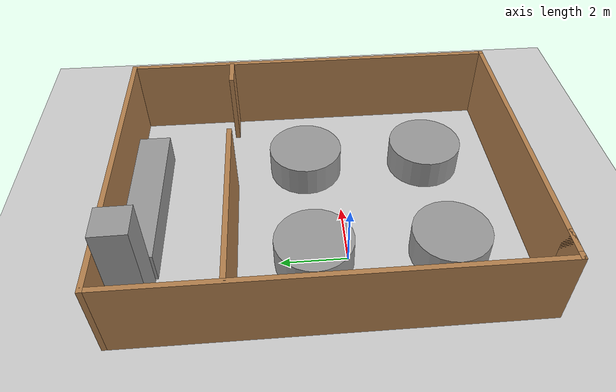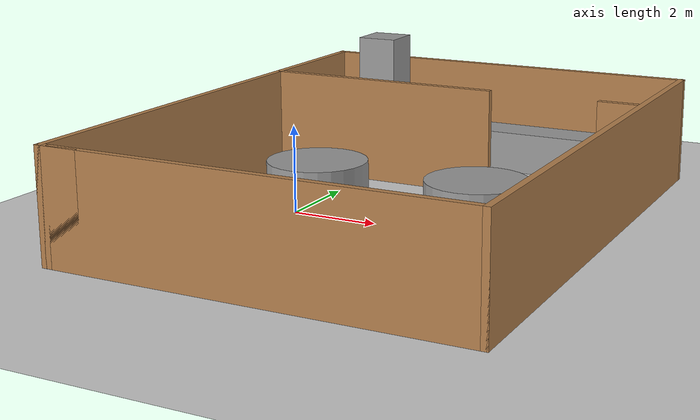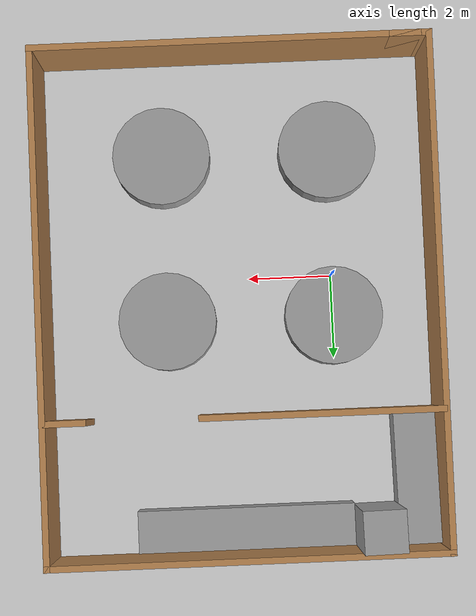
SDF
<sdf version="1.7">
 <world name="default">
  <light name="sun" type="directional">
   <cast_shadows>false</cast_shadows>
   <pose>0 0 10 0 -0 0</pose>
   <diffuse>0.8 0.8 0.8 1</diffuse>
   <specular>0.2 0.2 0.2 1</specular>
   <attenuation>
    <range>1000</range>
    <constant>0.9</constant>
    <linear>0.01</linear>
    <quadratic>0.001</quadratic>
   </attenuation>
   <direction>-0.5 0.1 -0.9</direction>
   <spot><inner_angle>0</inner_angle><outer_angle>0</outer_angle><falloff>0</falloff></spot>
  </light>
  <model name="ground_plane">
   <static>1</static>
   <link name="link">
    <collision name="collision">
     <geometry><plane><normal>0 0 1</normal><size>100 100</size></plane></geometry>
     <surface>
      <contact><collide_bitmask>65535</collide_bitmask></contact>
      <friction><ode><mu>100</mu><mu2>50</mu2></ode></friction>
     </surface>
    </collision>
    <visual name="visual">
     <cast_shadows>0</cast_shadows>
     <geometry><plane><normal>0 0 1</normal><size>100 100</size></plane></geometry>
     <material>
      <script><uri>file://media/materials/scripts/gazebo.material</uri><name>Gazebo/Grey</name></script>
     </material>
    </visual>
   </link>
  </model>
  <gravity>0 0 -9.8</gravity>
  <magnetic_field>6e-06 2.3e-05 -4.2e-05</magnetic_field>
  <atmosphere type="adiabatic"/>
  <physics name="default_physics" default="0" type="ode">
   <max_step_size>0.001</max_step_size>
   <real_time_factor>1</real_time_factor>
   <real_time_update_rate>1000</real_time_update_rate>
  </physics>
  <scene><ambient>0.4 0.4 0.4 1</ambient><background>0.7 0.7 0.7 1</background><shadows>1</shadows></scene>
  <audio><device>default</device></audio>
  <spherical_coordinates>
   <surface_model>EARTH_WGS84</surface_model>
   <latitude_deg>0</latitude_deg>
   <longitude_deg>0</longitude_deg>
   <elevation>0</elevation>
   <heading_deg>0</heading_deg>
  </spherical_coordinates>
  <model name="restaurante">
   <pose>2.25491 0.60306 0 0 -0 0</pose>
   <link name="Wall_15">
    <collision name="Wall_15_Collision">
     <geometry><box><size>9.25 0.15 2.5</size></box></geometry>
     <pose>0 0 1.25 0 -0 0</pose>
    </collision>
    <visual name="Wall_15_Visual">
     <pose>0 0 1.25 0 -0 0</pose>
     <geometry><box><size>9.25 0.15 2.5</size></box></geometry>
     <material>
      <script><uri>file://media/materials/scripts/gazebo.material</uri><name>Gazebo/Wood</name></script>
      <ambient>1 1 1 1</ambient>
     </material>
     <meta><layer>0</layer></meta>
    </visual>
    <pose>0.125 -6.05 0 0 -0 0</pose>
   </link>
   <link name="Wall_16">
    <collision name="Wall_16_Collision">
     <geometry><box><size>12.25 0.15 2.5</size></box></geometry>
     <pose>0 0 1.25 0 -0 0</pose>
    </collision>
    <visual name="Wall_16_Visual">
     <pose>0 0 1.25 0 -0 0</pose>
     <geometry><box><size>12.25 0.15 2.5</size></box></geometry>
     <material>
      <script><uri>file://media/materials/scripts/gazebo.material</uri><name>Gazebo/Wood</name></script>
      <ambient>1 1 1 1</ambient>
     </material>
     <meta><layer>0</layer></meta>
    </visual>
    <pose>4.675 -0 0 0 -0 1.5708</pose>
   </link>
   <link name="Wall_17">
    <collision name="Wall_17_Collision">
     <geometry><box><size>9.5 0.15 2.5</size></box></geometry>
     <pose>0 0 1.25 0 -0 0</pose>
    </collision>
    <visual name="Wall_17_Visual">
     <pose>0 0 1.25 0 -0 0</pose>
     <geometry><box><size>9.5 0.15 2.5</size></box></geometry>
     <material>
      <script><uri>file://media/materials/scripts/gazebo.material</uri><name>Gazebo/Wood</name></script>
      <ambient>1 1 1 1</ambient>
     </material>
     <meta><layer>0</layer></meta>
    </visual>
    <pose>-0 6.05 0 0 -0 3.14159</pose>
   </link>
   <link name="Wall_18">
    <collision name="Wall_18_Collision">
     <geometry><box><size>12.25 0.15 2.5</size></box></geometry>
     <pose>0 0 1.25 0 -0 0</pose>
    </collision>
    <visual name="Wall_18_Visual">
     <pose>0 0 1.25 0 -0 0</pose>
     <geometry><box><size>12.25 0.15 2.5</size></box></geometry>
     <material>
      <script><uri>file://media/materials/scripts/gazebo.material</uri><name>Gazebo/Wood</name></script>
      <ambient>1 1 1 1</ambient>
     </material>
     <meta><layer>0</layer></meta>
    </visual>
    <pose>-4.675 -0 0 0 -0 -1.5708</pose>
   </link>
   <link name="Wall_19">
    <collision name="Wall_19_Collision">
     <geometry><box><size>1 0.15 2.5</size></box></geometry>
     <pose>0 0 1.25 0 -0 0</pose>
    </collision>
    <visual name="Wall_19_Visual">
     <pose>0 0 1.25 0 -0 0</pose>
     <geometry><box><size>1 0.15 2.5</size></box></geometry>
     <material>
      <script><uri>file://media/materials/scripts/gazebo.material</uri><name>Gazebo/Wood</name></script>
      <ambient>1 1 1 1</ambient>
     </material>
     <meta><layer>0</layer></meta>
    </visual>
    <pose>-4.25 -6.05 0 0 -0 0</pose>
   </link>
   <link name="Wall_21">
    <collision name="Wall_21_Collision">
     <geometry><box><size>5.75 0.15 2.5</size></box></geometry>
     <pose>0 0 1.25 0 -0 0</pose>
    </collision>
    <visual name="Wall_21_Visual">
     <pose>0 0 1.25 0 -0 0</pose>
     <geometry><box><size>5.75 0.15 2.5</size></box></geometry>
     <material>
      <script><uri>file://media/materials/scripts/gazebo.material</uri><name>Gazebo/Wood</name></script>
      <ambient>1 1 1 1</ambient>
     </material>
     <meta><layer>0</layer></meta>
    </visual>
    <pose>-1.81522 2.7326 0 0 -0 0</pose>
   </link>
   <link name="Wall_23">
    <collision name="Wall_23_Collision">
     <geometry><box><size>1 0.15 2.5</size></box></geometry>
     <pose>0 0 1.25 0 -0 0</pose>
    </collision>
    <visual name="Wall_23_Visual">
     <pose>0 0 1.25 0 -0 0</pose>
     <geometry><box><size>1 0.15 2.5</size></box></geometry>
     <material>
      <script><uri>file://media/materials/scripts/gazebo.material</uri><name>Gazebo/Wood</name></script>
      <ambient>1 1 1 1</ambient>
     </material>
     <meta><layer>0</layer></meta>
    </visual>
    <pose>4.15995 2.72781 0 0 -0 3.14159</pose>
   </link>
   <static>1</static>
  </model>
  <model name="unit_cylinder">
   <pose>0.001122 -2.99748 0.499995 -4e-06 4e-06 -0.000178</pose>
   <link name="link">
    <inertial>
     <mass>1</mass>
     <inertia><ixx>0.145833</ixx><ixy>0</ixy><ixz>0</ixz><iyy>0.145833</iyy><iyz>0</iyz><izz>0.125</izz></inertia>
    </inertial>
    <collision name="collision">
     <geometry><cylinder><radius>1.17486</radius><length>1</length></cylinder></geometry>
    </collision>
    <visual name="visual">
     <geometry><cylinder><radius>1.17486</radius><length>1</length></cylinder></geometry>
     <material>
      <script><name>Gazebo/Grey</name><uri>file://media/materials/scripts/gazebo.material</uri></script>
     </material>
    </visual>
   </link>
  </model>
  <model name="unit_cylinder_clone">
   <pose>0.001071 1.00241 0.499995 -4e-06 4e-06 -0.000206</pose>
   <link name="link">
    <inertial>
     <mass>1</mass>
     <inertia><ixx>0.145833</ixx><ixy>0</ixy><ixz>0</ixz><iyy>0.145833</iyy><iyz>0</iyz><izz>0.125</izz></inertia>
    </inertial>
    <collision name="collision">
     <geometry><cylinder><radius>1.17486</radius><length>1</length></cylinder></geometry>
    </collision>
    <visual name="visual">
     <geometry><cylinder><radius>1.17486</radius><length>1</length></cylinder></geometry>
     <material>
      <script><name>Gazebo/Grey</name><uri>file://media/materials/scripts/gazebo.material</uri></script>
     </material>
    </visual>
   </link>
  </model>
  <model name="unit_cylinder_clone_0">
   <pose>4.00116 -2.99739 0.499995 -4e-06 4e-06 -0.00019</pose>
   <link name="link">
    <inertial>
     <mass>1</mass>
     <inertia><ixx>0.145833</ixx><ixy>0</ixy><ixz>0</ixz><iyy>0.145833</iyy><iyz>0</iyz><izz>0.125</izz></inertia>
    </inertial>
    <collision name="collision">
     <geometry><cylinder><radius>1.17486</radius><length>1</length></cylinder></geometry>
    </collision>
    <visual name="visual">
     <geometry><cylinder><radius>1.17486</radius><length>1</length></cylinder></geometry>
     <material>
      <script><name>Gazebo/Grey</name><uri>file://media/materials/scripts/gazebo.material</uri></script>
     </material>
    </visual>
   </link>
  </model>
  <model name="unit_cylinder_clone_1">
   <pose>3.99789 0.997868 0.499995 4e-06 -4e-06 0.000246</pose>
   <link name="link">
    <inertial>
     <mass>1</mass>
     <inertia><ixx>0.145833</ixx><ixy>0</ixy><ixz>0</ixz><iyy>0.145833</iyy><iyz>0</iyz><izz>0.125</izz></inertia>
    </inertial>
    <collision name="collision">
     <geometry><cylinder><radius>1.17486</radius><length>1</length></cylinder></geometry>
    </collision>
    <visual name="visual">
     <geometry><cylinder><radius>1.17486</radius><length>1</length></cylinder></geometry>
     <material>
      <script><name>Gazebo/Grey</name><uri>file://media/materials/scripts/gazebo.material</uri></script>
     </material>
    </visual>
   </link>
  </model>
  <model name="unit_box">
   <pose>-1.82106 4.98226 0.499813 -0.00012 -0 0.014867</pose>
   <link name="link">
    <inertial>
     <mass>1</mass>
     <inertia>
      <ixx>0.166667</ixx>
      <ixy>0</ixy>
      <ixz>0</ixz>
      <iyy>0.166667</iyy>
      <iyz>0</iyz>
      <izz>0.166667</izz>
     </inertia>
    </inertial>
    <collision name="collision"><geometry><box><size>1 3.12 1</size></box></geometry></collision>
    <visual name="visual">
     <geometry><box><size>1 3.12 1</size></box></geometry>
     <material>
      <script><name>Gazebo/Grey</name><uri>file://media/materials/scripts/gazebo.material</uri></script>
     </material>
    </visual>
   </link>
  </model>
  <model name="unit_box_0">
   <pose>-0.836768 6.06992 1.55512 2e-06 -0 0.015581</pose>
   <link name="link">
    <inertial>
     <mass>1</mass>
     <inertia>
      <ixx>0.166667</ixx>
      <ixy>0</ixy>
      <ixz>0</ixz>
      <iyy>0.166667</iyy>
      <iyz>0</iyz>
      <izz>0.166667</izz>
     </inertia>
    </inertial>
    <collision name="collision"><geometry><box><size>1 1 3.11025</size></box></geometry></collision>
    <visual name="visual">
     <geometry><box><size>1 1 3.11025</size></box></geometry>
     <material>
      <script><name>Gazebo/Grey</name><uri>file://media/materials/scripts/gazebo.material</uri></script>
     </material>
    </visual>
   </link>
  </model>
  <model name="unit_box_1">
   <pose>2.29704 6.00652 0.497515 0 0.00096 -2.4e-05</pose>
   <link name="link">
    <inertial>
     <mass>1</mass>
     <inertia>
      <ixx>0.166667</ixx>
      <ixy>0</ixy>
      <ixz>0</ixz>
      <iyy>0.166667</iyy>
      <iyz>0</iyz>
      <izz>0.166667</izz>
     </inertia>
    </inertial>
    <collision name="collision"><geometry><box><size>5.17608 1 1</size></box></geometry></collision>
    <visual name="visual">
     <geometry><box><size>5.17608 1 1</size></box></geometry>
     <material>
      <script><name>Gazebo/Grey</name><uri>file://media/materials/scripts/gazebo.material</uri></script>
     </material>
    </visual>
   </link>
  </model>
 </world>
</sdf>
